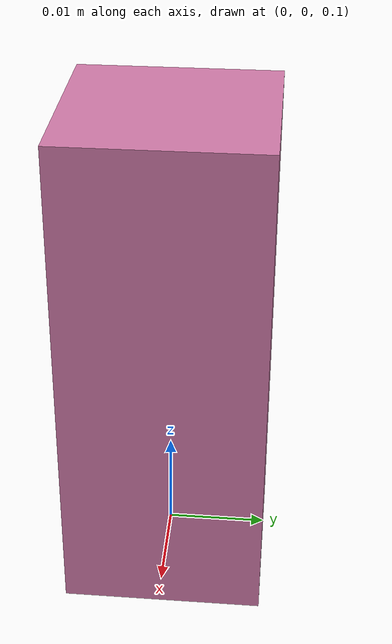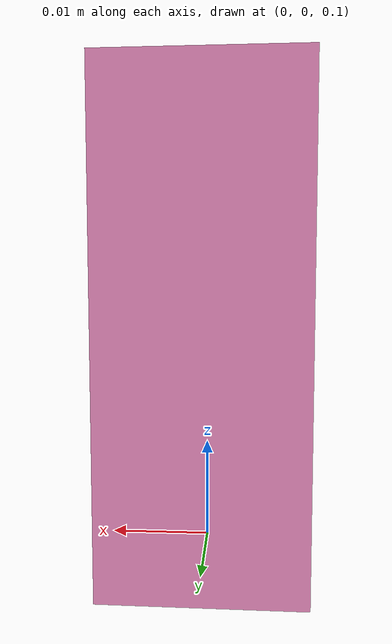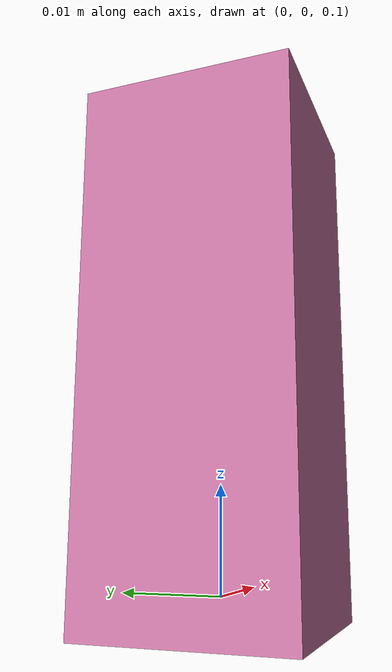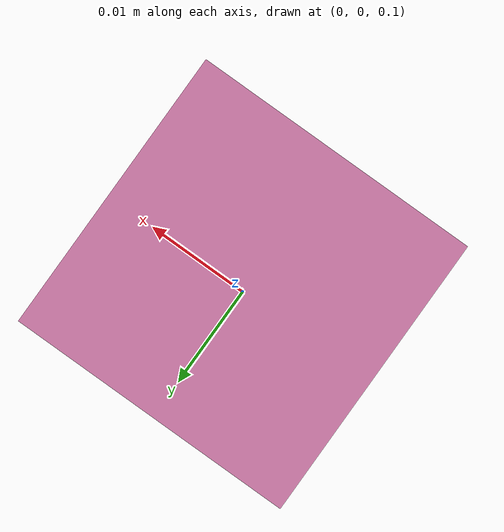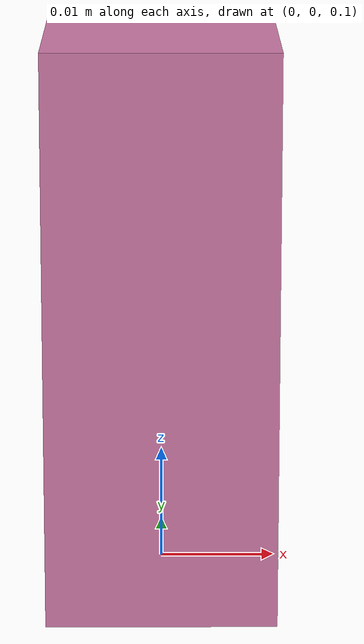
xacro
<?xml version="1.0"?>
<robot name="limpeza" xmlns:xacro="http://www.ros.org/wiki/xacro">

  <xacro:include filename="macros/link_geometry.urdf.xacro" />
  <xacro:include filename="macros/properties.urdf.xacro" />

  <xacro:include filename="macros/parts/base.urdf.xacro" />
  <xacro:include filename="macros/parts/wheel.urdf.xacro" />

  <xacro:include filename="simulation/gazebo_base.urdf.xacro" />
  <xacro:include filename="simulation/gazebo_laser.urdf.xacro" />
  <xacro:include filename="simulation/gazebo_camera.urdf.xacro" />
  <xacro:include filename="simulation/imu.urdf.xacro"/>

  <!-- Robot -->

  <xacro:base name="base_link"/>
  <xacro:wheel name="left_wheel">
    <origin xyz="-0.048 0.048 ${-wheel_radius -body_length/2}" rpy="0 0 0"/>
  </xacro:wheel>
  <xacro:wheel name="right_wheel">
    <origin xyz="-0.048 -0.048 ${-wheel_radius -body_length/2}" rpy="0 0 0"/>
  </xacro:wheel>
  <xacro:wheel name="front_wheel">
    <origin xyz="0.048 0 ${-wheel_radius -body_length/2}" rpy="0 0 0"/>
  </xacro:wheel>

  <!-- IMU -->
  <xacro:imu name="imu" parent="base_link">
    <origin xyz="0.0 0.0 0.055" rpy="0 0 0"/>
  </xacro:imu>

  <!-- Plugins -->
  <xacro:gazebo_base/>
  <xacro:gazebo_laser reference="base_scan"/>
</robot>

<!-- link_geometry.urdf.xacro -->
<robot xmlns:xacro="http://ros.org/wiki/xacro">

  <!-- box -->
  <xacro:macro name="create_box" params="m x y z *origin use_visual:=false">
    <xacro:if value="${use_visual}">
      <visual>
        <xacro:insert_block name="origin"/>
        <geometry>
          <box size="${x} ${y} ${z}"/>
        </geometry>
      </visual>
    </xacro:if>
    <collision>
      <xacro:insert_block name="origin"/>
      <geometry>
        <box size="${x} ${y} ${z}"/>
      </geometry>
    </collision>
    <inertial>
      <mass value="${m}"/>
      <inertia
        ixx="${1/12*m*(y*y+z*z)}" ixy="0.0" ixz="0.0"
        iyy="${1/12*m*(x*x+z*z)}" iyz="0.0"
        izz="${1/12*m*(x*x+y*y)}"/>
    </inertial>
  </xacro:macro>

  <!-- cylinder -->
  <xacro:macro name="create_cylinder" params="m r l *origin use_visual:=false">
    <xacro:if value="${use_visual}">
      <visual>
        <xacro:insert_block name="origin"/>
        <geometry>
          <cylinder radius="${r}" length="${l}"/>
        </geometry>
      </visual>
    </xacro:if>
    <collision>
      <xacro:insert_block name="origin"/>
      <geometry>
        <cylinder radius="${r}" length="${l}"/>
      </geometry>
    </collision>
    <inertial>
      <mass value="${m}"/>
      <inertia
        ixx="${1/12*m*(3*r*r+l*l)}" ixy="0.0" ixz="0.0"
        iyy="${1/12*m*(3*r*r+l*l)}" iyz="0.0"
        izz="${1/2*(m*r*r)}"/>
    </inertial>
  </xacro:macro>

  <!-- sphere -->
  <xacro:macro name="create_sphere" params="m r *origin use_visual:=false">
    <xacro:if value="${use_visual}">
      <visual>
        <xacro:insert_block name="origin" />
        <geometry>
          <sphere radius="${r}"/>
        </geometry>
      </visual>
    </xacro:if>
    <collision>
      <xacro:insert_block name="origin" />
      <geometry>
        <sphere radius="${r}"/>
      </geometry>
    </collision>
    <inertial>
      <mass value="${m}"/>
      <inertia
        ixx="${(2/5)*m*r*r}" ixy="0.0" ixz="0.0"
        iyy="${(2/5)*m*r*r}" iyz="0.0"
        izz="${(2/5)*m*r*r}"/>
    </inertial>
  </xacro:macro>

</robot>

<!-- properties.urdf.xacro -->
<robot xmlns:xacro="http://ros.org/wiki/xacro">

  <xacro:property name="PI"             value="3.14159265" />

  <xacro:property name="robot_mass"      value="3" />

  <xacro:property name="body_mass"      value="${70 * robot_mass/100}" />
  <xacro:property name="body_radius"    value="0.115" />
  <xacro:property name="body_length"    value="0.2" />

  <xacro:property name="laser_mass"      value="${15 * robot_mass/100}" />
  <xacro:property name="laser_radius"    value="${body_radius/3}" />
  <xacro:property name="laser_length"    value="0.025" />

  <xacro:property name="wheel_mass"      value="${5 * robot_mass/100}" />
  <xacro:property name="wheel_radius"    value="0.0335" />

</robot>

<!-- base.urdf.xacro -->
<robot xmlns:xacro="http://ros.org/wiki/xacro">

  <xacro:macro name="base" params="name">

    <!-- link: base_footprint -->
    <link name='base_footprint'/>

    <!-- joint: base_footprint -> base -->
    <joint name="joint_base_footprint_to_base" type="fixed">
      <origin xyz="0 0 ${(wheel_radius)*2}" rpy="0 0 0"/>
      <parent link="base_footprint"/>
      <child link="base_link"/>
    </joint>

    <!-- link: base -->
    <link name="${name}">
      <xacro:create_cylinder m="${body_mass}" r="${body_radius}" l="${body_length}">
        <origin xyz="0 0 0" rpy="0 0 0"/>
      </xacro:create_cylinder>
    </link>

  <joint name="base_to_laser" type="fixed">
    <origin xyz="0 0 ${body_length/2 + laser_length/2}" rpy="0 0 0"/>
    <parent link="${name}"/>
    <child link="base_scan"/>
  </joint>
  <link name="base_scan">
    <xacro:create_cylinder m="${laser_mass}" r="${laser_radius}" l="${laser_length}">
        <origin xyz="0 0 0" rpy="0 0 0"/>
    </xacro:create_cylinder>
  </link>

  </xacro:macro>

</robot>

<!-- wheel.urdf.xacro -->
<robot xmlns:xacro="http://ros.org/wiki/xacro">

  <xacro:macro name="wheel" params="name *origin">

    <!-- joint: parent_base -> wheel -->
    <joint name="base_link_to_${name}" type="continuous">
      <xacro:insert_block name="origin" />
      <parent link="base_link"/>
      <child link="${name}"/>
      <axis xyz="0 1 0"/>
    </joint>

    <!-- link: wheel -->
    <link name="${name}">
      <origin xyz="0 0 0" rpy="${-PI/2} 0 0"/>
      <xacro:create_sphere m="${wheel_mass}" r="${wheel_radius}">
        <origin xyz="0 0 0" rpy="0 0 0"/>
      </xacro:create_sphere>
    </link>

  </xacro:macro>

</robot>

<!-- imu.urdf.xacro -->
<robot xmlns:xacro="http://ros.org/wiki/xacro">

  <xacro:macro name="imu" params="name parent *origin">

    <joint name="${parent}_to_${name}" type="fixed">
        <xacro:insert_block name="origin" />
        <parent link="${parent}"/>
        <child link="${name}"/>
    </joint>

    <link name="${name}">
      <visual>
        <geometry>
          <box size="0.02 0.02 0.05"/>
        </geometry>
      </visual>
      <collision>
        <geometry>
          <box size="0.02 0.02 0.05"/>
        </geometry>
      </collision>
      <inertial>
        <mass value="1e-5" />
        <origin xyz="0 0 0" rpy="0 0 0"/>
        <inertia ixx="1e-6" ixy="0" ixz="0" iyy="1e-6" iyz="0" izz="1e-6" />
      </inertial>
    </link>

    <gazebo reference="${name}">
      <gravity>true</gravity>
      <sensor name="imu_sensor" type="imu">
        <always_on>true</always_on>
        <update_rate>100</update_rate>
        <visualize>true</visualize>
        <pose>0 0 0 0 0 0</pose>
        <plugin filename="libgazebo_ros_imu_sensor.so" name="imu_plugin">
          <ros>
            <!-- publish to /imu/data -->
            <remapping>~/out:=imu</remapping>
          </ros>
          <topicName>${name}</topicName>
          <bodyName>${name}</bodyName>
          <updateRateHZ>50.0</updateRateHZ>
          <gaussianNoise>0.005</gaussianNoise>
          <xyzOffset>0 0 0</xyzOffset>
          <rpyOffset>0 0 0</rpyOffset>
          <frameName>${name}</frameName>
        </plugin>
      </sensor>
    </gazebo>

  </xacro:macro>

</robot>
